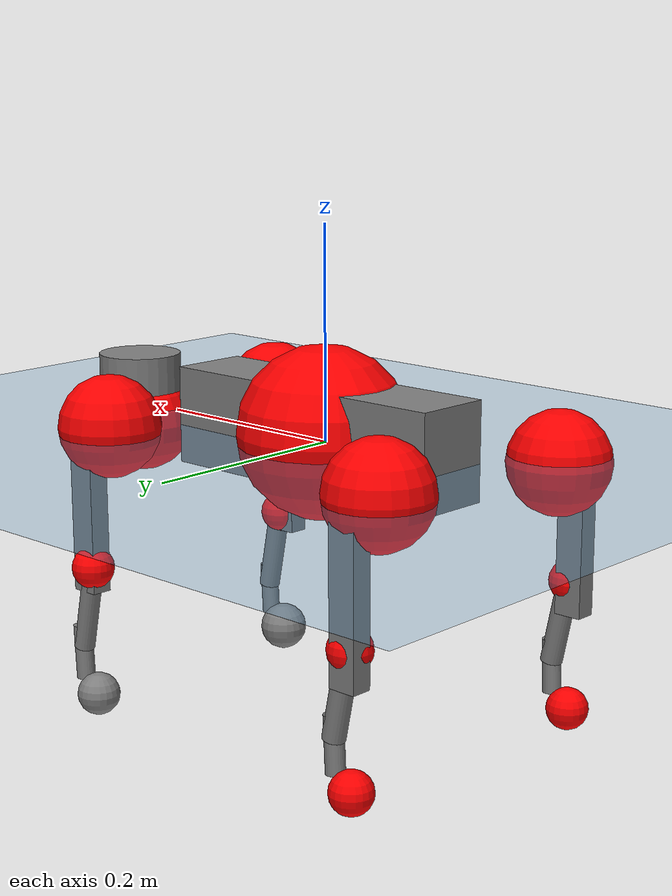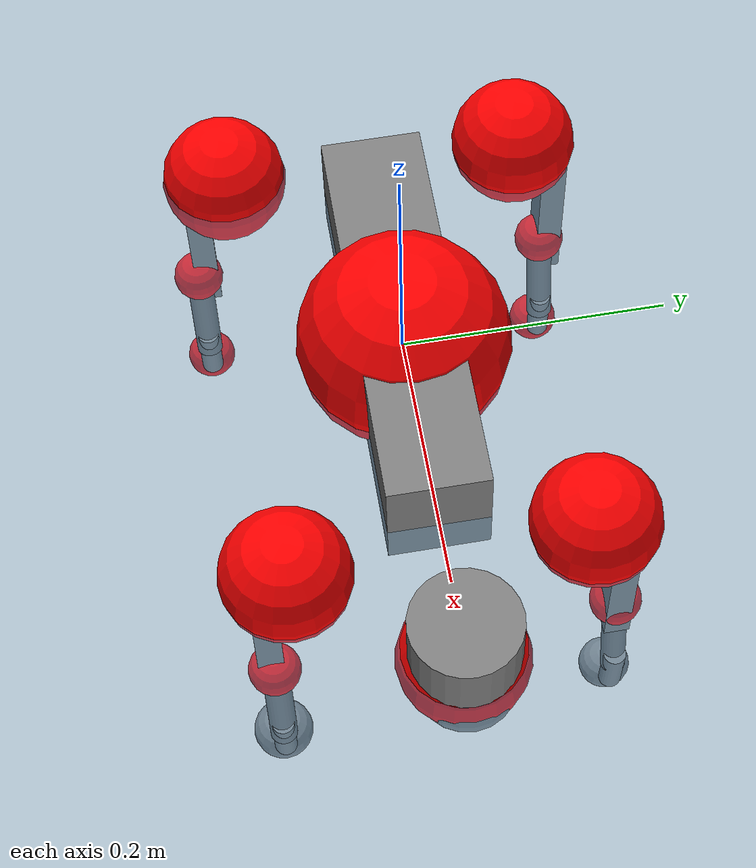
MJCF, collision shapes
<mujoco model="go2">
  <compiler angle="radian" assetdir="assets" balanceinertia="true" inertiafromgeom="false"/>

  <option timestep="0.005" density="1.2" viscosity="2e-05"/>

  <size nkey="1"/>

  <visual>
    <quality shadowsize="8192"/>
    <map shadowclip="0.5"/>
  </visual>

  <default>
    <default class="/">
      <geom contype="0" conaffinity="0" group="1" solref="-1000 -80"/>
      <site size="0.01 0.005 0.005" group="5"/>
      <general forcelimited="true" biastype="affine" gainprm="20" biasprm="0 -20 -0.5"/>
      <default class="go2">
        <joint armature="0.01" damping="0.01" frictionloss="0.2"/>
        <geom condim="1" margin="0.001"/>
        <default class="visual">
          <geom type="mesh" group="2"/>
        </default>
        <default class="collision">
          <geom group="3"/>
          <default class="foot">
            <geom size="0.022 0 0" condim="6" priority="1" friction="0.8 0.02 0.01" solimp="0.015 1 0.022"/>
          </default>
        </default>
        <default class="reward_collision_sphere">
          <geom group="5" rgba="1 0 0 1"/>
        </default>
      </default>
    </default>
  </default>

  <asset>
    <texture type="skybox" colorspace="auto" name="//unnamed_texture_0" builtin="gradient" rgb1="0.95 0.95 0.95" rgb2="0.95 0.95 0.95" width="100" height="600"/>
    <texture type="2d" colorspace="auto" name="texplane" builtin="checker" rgb1="0.345 0.575 0.748" rgb2="0.345 0.575 0.748" markrgb="1 1 1" width="512" height="512"/>
    <material name="MatPlane" class="/" texture="texplane" texuniform="true" texrepeat="2 2" specular="0.9"/>
    <material name="metal" class="/" rgba="0.9 0.95 0.95 1"/>
    <material name="black" class="/" rgba="0 0 0 1"/>
    <material name="white" class="/"/>
    <material name="gray" class="/" rgba="0.671705 0.692426 0.77427 1"/>
    <mesh name="base_0" class="/" file="base_0.obj"/>
    <mesh name="base_1" class="/" file="base_1.obj"/>
    <mesh name="base_2" class="/" file="base_2.obj"/>
    <mesh name="base_3" class="/" file="base_3.obj"/>
    <mesh name="base_4" class="/" file="base_4.obj"/>
    <mesh name="hip_0" class="/" file="hip_0.obj"/>
    <mesh name="hip_1" class="/" file="hip_1.obj"/>
    <mesh name="thigh_0" class="/" file="thigh_0.obj"/>
    <mesh name="thigh_1" class="/" file="thigh_1.obj"/>
    <mesh name="thigh_mirror_0" class="/" file="thigh_mirror_0.obj"/>
    <mesh name="thigh_mirror_1" class="/" file="thigh_mirror_1.obj"/>
    <mesh name="calf_0" class="/" file="calf_0.obj"/>
    <mesh name="calf_1" class="/" file="calf_1.obj"/>
    <mesh name="calf_mirror_0" class="/" file="calf_mirror_0.obj"/>
    <mesh name="calf_mirror_1" class="/" file="calf_mirror_1.obj"/>
    <mesh name="foot" class="/" file="foot.obj"/>
  </asset>

  <worldbody>
    <geom name="floor" class="/" size="100 100 0.125" type="plane" group="0" material="MatPlane"/>
    <light name="toplight_shadow" class="/" pos="0 0 5" dir="0.0990148 0.0990148 -0.990148" type="directional" ambient="0.04 0.04 0.04" diffuse="0.55 0.55 0.55" specular="0.12 0.12 0.12"/>
    <light name="toplight_fill" class="/" pos="0 0 5" dir="0.0990148 0.0990148 -0.990148" type="directional" castshadow="false" ambient="0.04 0.04 0.04" diffuse="0.3 0.3 0.3" specular="0.08 0.08 0.08"/>
    <body name="trunk" childclass="go2" pos="0.00141361 0.000947215 0.00983857" quat="0.99999 0.00281982 0.00262331 -0.0021628">
      <inertial pos="0.0210747 -0.00697162 -0.00348127" quat="0.00232394 0.736662 -0.0265837 0.675734" mass="3.42364" diaginertia="0.0503641 0.0650116 0.00158872"/>
      <joint name="//unnamed_joint_0" type="free" armature="0" damping="0" frictionloss="0"/>
      <geom name="//unnamed_geom_1" class="visual" material="black" mesh="base_0"/>
      <geom name="//unnamed_geom_2" class="visual" material="black" mesh="base_1"/>
      <geom name="//unnamed_geom_3" class="visual" material="black" mesh="base_2"/>
      <geom name="//unnamed_geom_4" class="visual" material="white" mesh="base_3"/>
      <geom name="//unnamed_geom_5" class="visual" material="gray" mesh="base_4"/>
      <geom name="trunk_1" class="collision" size="0.152322 0.0378578 0.0461582" type="box"/>
      <geom name="trunk_2" class="collision" size="0.0404896 0.0364407" pos="0.253109 0 0.00592586" type="cylinder"/>
      <geom name="trunk_3" class="collision" size="0.0380603" pos="0.260214 0 -0.0355551"/>
      <geom name="//unnamed_geom_9" class="reward_collision_sphere" size="0.0809793"/>
      <geom name="//unnamed_geom_10" class="reward_collision_sphere" size="0.0485876" pos="0.248668 0 -0.0266664"/>
      <site name="imu" pos="-0.0193462 -0.0202303 0.0574265" size="0.00809793"/>
      <camera name="track" pos="0 -1.89738 0" quat="0.707107 0.707107 0 0" mode="trackcom"/>
      <camera name="ego_camera" pos="0.277087 0 0.0266664" quat="-0.5 -0.5 0.5 0.5"/>
      <body name="FL_hip" pos="0.171188 0.0430696 -0.00273622" quat="1 -0.000555724 5.27708e-05 1.98376e-05">
        <inertial pos="0.00354038 0.00426207 0.00947504" quat="0.519804 0.463484 0.496165 0.518465" mass="0.379525" diaginertia="0.00047453 0.000483483 3.69753e-05"/>
        <joint name="FL_hip_joint" pos="0 0 0" axis="0.999223 -0.0258932 0.0296979" stiffness="0.0301197" range="-1.06118 0.977656" armature="0.00789586" damping="0.0369894" frictionloss="0.134319"/>
        <geom name="//unnamed_geom_11" class="visual" material="metal" mesh="hip_0"/>
        <geom name="//unnamed_geom_12" class="visual" material="gray" mesh="hip_1"/>
        <geom name="//unnamed_geom_13" class="collision" size="0.0372505 0.0161959" pos="0 0.0758953 0" quat="0.707107 0.707107 0 0" type="cylinder"/>
        <geom name="//unnamed_geom_14" class="reward_collision_sphere" size="0.0485876" pos="0 0.0664084 0"/>
        <body name="FL_thigh" pos="0.00683217 0.0883456 -0.00712297" quat="1 -0.000377273 8.26761e-05 0.000337799">
          <inertial pos="-0.00135198 -0.0198126 -0.0212782" quat="0.829422 0.0838692 -0.0244458 0.551749" mass="0.672413" diaginertia="0.00362791 0.00494029 7.64499e-05"/>
          <joint name="FL_thigh_joint" pos="0 0 0" axis="-0.000334838 1 -0.0001258" stiffness="0.0100743" range="-1.49623 3.49859" armature="0.0101434" damping="0" frictionloss="0.159842"/>
          <geom name="//unnamed_geom_15" class="visual" material="metal" mesh="thigh_0"/>
          <geom name="//unnamed_geom_16" class="visual" material="gray" mesh="thigh_1"/>
          <geom name="//unnamed_geom_17" class="collision" size="0.0862429 0.00991996 0.0137665" pos="0 0 -0.0631104" quat="0.707107 0 0.707107 0" type="box"/>
          <body name="FL_calf" pos="-0.00314088 0.00118335 -0.126413" quat="1 -5.64756e-05 6.21655e-05 -4.23693e-05">
            <inertial pos="0.0165555 0.00859532 -0.0852479" quat="0.711263 -0.00611759 -0.0101419 0.702826" mass="0.127106" diaginertia="0.00089011 0.00112127 3.74327e-06"/>
            <joint name="FL_calf_joint" pos="0 0 0" axis="-0.00998439 0.999948 0.00222105" stiffness="0.0188996" range="-2.50831 -0.918555" armature="0.00847123" damping="0.00548247" frictionloss="0.0791223"/>
            <geom name="//unnamed_geom_18" class="visual" material="gray" mesh="calf_0"/>
            <geom name="//unnamed_geom_19" class="visual" material="black" mesh="calf_1"/>
            <geom name="FL_calf0" class="collision" size="0.00971751 0.0485876" pos="0.00710481 0 -0.0355551" quat="0.994493 0 -0.104807 0" type="cylinder"/>
            <geom name="//unnamed_geom_21" class="collision" size="0.00890772 0.0263183" pos="0.017762 0 -0.0877027" quat="0.999688 0 0.0249974 0" type="cylinder"/>
            <geom name="//unnamed_geom_22" class="visual" pos="0 0 -0.126221" quat="1 0 0 0" material="black" mesh="foot"/>
            <geom name="FL_foot" class="foot" size="0.0204545" pos="-0.0017762 0 -0.126221"/>
            <geom name="//unnamed_geom_24" class="reward_collision_sphere" size="0.0202448"/>
            <geom name="//unnamed_geom_25" class="reward_collision_sphere" size="0.0202448" pos="-0.0017762 0 -0.126221"/>
            <site name="FL_foot" class="foot" pos="-0.0017762 0 -0.126221" size="0.00809793"/>
          </body>
        </body>
      </body>
      <body name="FR_hip" pos="0.175659 -0.0471021 -0.00218218" quat="0.999987 -0.00492003 0.00135818 -0.000479147">
        <inertial pos="-0.00279531 -0.0015884 0.00153323" quat="0.53534 0.481298 0.476636 0.504561" mass="0.317943" diaginertia="0.000498534 0.000452708 3.5987e-05"/>
        <joint name="FR_hip_joint" pos="0 0 0" axis="0.999837 -0.013587 0.0118728" stiffness="0.0371817" range="-0.852851 1.11559" armature="0.00806186" damping="0.0307075" frictionloss="0.123219"/>
        <geom name="//unnamed_geom_26" class="visual" pos="0 3.10225e-09 1.33062e-07" quat="4.63268e-05 1 0 0" material="metal" mesh="hip_0"/>
        <geom name="//unnamed_geom_27" class="visual" pos="0 5.02911e-09 -3.29113e-07" quat="4.63268e-05 1 0 0" material="gray" mesh="hip_1"/>
        <geom name="//unnamed_geom_28" class="collision" size="0.0372505 0.0161959" pos="0 -0.0758953 0" quat="0.707107 0.707107 0 0" type="cylinder"/>
        <geom name="//unnamed_geom_29" class="reward_collision_sphere" size="0.0485876" pos="0 -0.0664084 0"/>
        <body name="FR_thigh" pos="0.00261732 -0.0860669 -0.00335066" quat="0.999999 0.00106923 0.000566213 -0.000183486">
          <inertial pos="0.000207391 0.0235857 -0.0186253" quat="0.552127 -0.0222138 0.085054 0.829113" mass="0.565841" diaginertia="0.00337819 0.00489382 6.25613e-05"/>
          <joint name="FR_thigh_joint" pos="0 0 0" axis="0.000212085 -1 -0.000958202" range="-3.48796 1.64792" armature="0.00919491" damping="0.0587425" frictionloss="0.215425"/>
          <geom name="//unnamed_geom_30" class="visual" material="metal" mesh="thigh_mirror_0"/>
          <geom name="//unnamed_geom_31" class="visual" material="gray" mesh="thigh_mirror_1"/>
          <geom name="//unnamed_geom_32" class="collision" size="0.0862429 0.00991996 0.0137665" pos="0 0 -0.0631104" quat="0.707107 0 0.707107 0" type="box"/>
          <body name="FR_calf" pos="0.009609 0.00229693 -0.131686" quat="1 0.000151576 7.60287e-05 -7.13166e-05">
            <inertial pos="0.00586279 0.00909384 -0.0905033" quat="0.720939 -0.0502582 0.00291378 0.691168" mass="0.140113" diaginertia="0.000890391 0.0011233 4.55061e-06"/>
            <joint name="FR_calf_joint" pos="0 0 0" axis="0.0115026 -0.99992 0.00530248" range="0.805265 2.70042" armature="0.00804782" damping="0.0331602" frictionloss="0.186131"/>
            <geom name="//unnamed_geom_33" class="visual" material="gray" mesh="calf_mirror_0"/>
            <geom name="//unnamed_geom_34" class="visual" material="black" mesh="calf_mirror_1"/>
            <geom name="FR_calf0" class="collision" size="0.0105273 0.0485876" pos="0.00888101 0 -0.0355551" quat="0.995004 0 -0.0998334 0" type="cylinder"/>
            <geom name="//unnamed_geom_36" class="collision" size="0.00890772 0.0263183" pos="0.017762 0 -0.0877027" quat="0.999688 0 0.0249974 0" type="cylinder"/>
            <geom name="//unnamed_geom_37" class="visual" pos="0 0 -0.126221" quat="1 0 0 0" material="black" mesh="foot"/>
            <geom name="FR_foot" class="foot" size="0.0237885" pos="-0.0017762 0 -0.126221"/>
            <geom name="//unnamed_geom_39" class="reward_collision_sphere" size="0.0202448"/>
            <geom name="//unnamed_geom_40" class="reward_collision_sphere" size="0.0202448" pos="-0.0017762 0 -0.126221"/>
            <site name="FR_foot" class="foot" pos="-0.0017762 0 -0.126221" size="0.00809793"/>
          </body>
        </body>
      </body>
      <body name="RL_hip" pos="-0.170626 0.04916 -0.00633627" quat="1 -0.00041347 -0.000305461 -8.78098e-05">
        <inertial pos="0.00566983 0.0101564 0.00979914" quat="0.499409 0.502883 0.501189 0.496496" mass="0.370499" diaginertia="0.000531381 0.000469305 3.97355e-05"/>
        <joint name="RL_hip_joint" pos="0 0 0" axis="-0.999261 -0.0342352 -0.0174605" stiffness="0.00528366" range="-0.891552 0.874906" armature="0.00499287" damping="0" frictionloss="0.159035"/>
        <geom name="//unnamed_geom_41" class="visual" pos="-2.57441e-09 0 -5.04643e-07" quat="4.63268e-05 0 1 0" material="metal" mesh="hip_0"/>
        <geom name="//unnamed_geom_42" class="visual" pos="-4.17342e-09 0 -4.47546e-07" quat="4.63268e-05 0 1 0" material="gray" mesh="hip_1"/>
        <geom name="//unnamed_geom_43" class="collision" size="0.0372505 0.0161959" pos="0 0.0758953 0" quat="0.707107 0.707107 0 0" type="cylinder"/>
        <geom name="//unnamed_geom_44" class="reward_collision_sphere" size="0.0485876" pos="0 0.0664084 0"/>
        <body name="RL_thigh" pos="0.00336178 0.098091 -0.01011" quat="0.999996 -0.00260705 -0.00081553 0.00099947">
          <inertial pos="-0.0138812 -0.0153194 -0.00894877" quat="0.828812 0.0846268 -0.0194086 0.55275" mass="0.514486" diaginertia="0.00251825 0.00392695 5.16704e-05"/>
          <joint name="RL_thigh_joint" pos="0 0 0" axis="-0.0310767 0.99847 0.045733" range="-0.429016 4.56831" armature="0.00837365" damping="0.0589293" frictionloss="0.141378"/>
          <geom name="//unnamed_geom_45" class="visual" material="metal" mesh="thigh_0"/>
          <geom name="//unnamed_geom_46" class="visual" material="gray" mesh="thigh_1"/>
          <geom name="//unnamed_geom_47" class="collision" size="0.0862429 0.00991996 0.0137665" pos="0 0 -0.0631104" quat="0.707107 0 0.707107 0" type="box"/>
          <body name="RL_calf" pos="0.00505854 -0.00657702 -0.118052" quat="0.999995 0.00190404 0.000957605 -0.00246213">
            <inertial pos="0.0150753 -0.00588921 -0.0736994" quat="0.693966 -0.0271977 0.0155593 0.719326" mass="0.140395" diaginertia="0.000880293 0.00125216 4.03785e-06"/>
            <joint name="RL_calf_joint" pos="0 0 0" axis="0.0148429 0.99989 0.000781519" range="-2.7068 -0.618893" armature="0.00475762" damping="0.0552687" frictionloss="0.160194"/>
            <geom name="//unnamed_geom_48" class="visual" material="gray" mesh="calf_0"/>
            <geom name="//unnamed_geom_49" class="visual" material="black" mesh="calf_1"/>
            <geom name="RL_calf0" class="collision" size="0.0105273 0.0485876" pos="0.00888101 0 -0.0355551" quat="0.995004 0 -0.0998334 0" type="cylinder"/>
            <geom name="//unnamed_geom_51" class="collision" size="0.00890772 0.0263183" pos="0.017762 0 -0.0877027" quat="0.999688 0 0.0249974 0" type="cylinder"/>
            <geom name="//unnamed_geom_52" class="visual" pos="0 0 -0.126221" quat="1 0 0 0" material="black" mesh="foot"/>
            <geom name="RL_foot" class="foot" size="0.0170688" pos="-0.0017762 0 -0.126221"/>
            <geom name="//unnamed_geom_54" class="reward_collision_sphere" size="0.0202448"/>
            <geom name="//unnamed_geom_55" class="reward_collision_sphere" size="0.0202448" pos="-0.0017762 0 -0.126221"/>
            <site name="RL_foot" class="foot" pos="-0.0017762 0 -0.126221" size="0.00809793"/>
          </body>
        </body>
      </body>
      <body name="RR_hip" pos="-0.182574 -0.0470557 -0.0181938" quat="1 0.000159729 -0.000109945 0.000306069">
        <inertial pos="0.011671 0.0025129 -0.00310202" quat="0.476075 0.500186 0.483297 0.538136" mass="0.359373" diaginertia="0.000379396 0.000410323 2.94286e-05"/>
        <joint name="RR_hip_joint" pos="0 0 0" axis="-0.99851 -0.0531236 0.0124881" stiffness="0.00701215" range="-0.993188 1.04645" armature="0.00793014" damping="0.0158001" frictionloss="0.0753224"/>
        <geom name="//unnamed_geom_56" class="visual" pos="2.5765e-09 3.10225e-09 -6.37705e-07" quat="2.14617e-09 4.63268e-05 4.63268e-05 -1" material="metal" mesh="hip_0"/>
        <geom name="//unnamed_geom_57" class="visual" pos="4.16823e-09 5.02911e-09 -1.18434e-07" quat="2.14617e-09 4.63268e-05 4.63268e-05 -1" material="gray" mesh="hip_1"/>
        <geom name="//unnamed_geom_58" class="collision" size="0.0372505 0.0161959" pos="0 -0.0758953 0" quat="0.707107 0.707107 0 0" type="cylinder"/>
        <geom name="//unnamed_geom_59" class="reward_collision_sphere" size="0.0485876" pos="0 -0.0664084 0"/>
        <body name="RR_thigh" pos="-0.00189532 -0.0925258 0.000842879" quat="0.999999 -0.000679805 0.000721538 -0.000264829">
          <inertial pos="-0.00658436 0.0245465 -0.0104523" quat="0.531294 -0.025916 0.0874755 0.842261" mass="0.698462" diaginertia="0.00300472 0.00445788 6.49816e-05"/>
          <joint name="RR_thigh_joint" pos="0 0 0" axis="-0.00715996 -0.999943 0.00791973" stiffness="0.005203" range="-4.52593 0.651104" armature="0.00873749" damping="0.0102751" frictionloss="0.163931"/>
          <geom name="//unnamed_geom_60" class="visual" material="metal" mesh="thigh_mirror_0"/>
          <geom name="//unnamed_geom_61" class="visual" material="gray" mesh="thigh_mirror_1"/>
          <geom name="//unnamed_geom_62" class="collision" size="0.0862429 0.00991996 0.0137665" pos="0 0 -0.0631104" quat="0.707107 0 0.707107 0" type="box"/>
          <body name="RR_calf" pos="0.0089747 -0.0067021 -0.120329" quat="0.999985 -0.00151992 -0.00351203 -0.0039506">
            <inertial pos="0.0044729 0.00136916 -0.0863853" quat="0.699053 0.0377337 -0.00197013 0.714071" mass="0.120298" diaginertia="0.00076897 0.0010187 4.0821e-06"/>
            <joint name="RR_calf_joint" pos="0 0 0" axis="-0.00580681 -0.998691 -0.0508208" stiffness="0.045839" range="0.683371 2.72346" armature="0.00858469" damping="0.0486316" frictionloss="0.164866"/>
            <geom name="//unnamed_geom_63" class="visual" material="gray" mesh="calf_mirror_0"/>
            <geom name="//unnamed_geom_64" class="visual" material="black" mesh="calf_mirror_1"/>
            <geom name="RR_calf0" class="collision" size="0.0105273 0.0485876" pos="0.00888101 0 -0.0355551" quat="0.995004 0 -0.0998334 0" type="cylinder"/>
            <geom name="//unnamed_geom_66" class="collision" size="0.00890772 0.0263183" pos="0.017762 0 -0.0877027" quat="0.999688 0 0.0249974 0" type="cylinder"/>
            <geom name="//unnamed_geom_67" class="visual" pos="0 0 -0.126221" quat="1 0 0 0" material="black" mesh="foot"/>
            <geom name="RR_foot" class="foot" size="0.0182857" pos="-0.0017762 0 -0.126221"/>
            <geom name="//unnamed_geom_69" class="reward_collision_sphere" size="0.0202448"/>
            <geom name="//unnamed_geom_70" class="reward_collision_sphere" size="0.0202448" pos="-0.0017762 0 -0.126221"/>
            <site name="RR_foot" class="foot" pos="-0.0017762 0 -0.126221" size="0.00809793"/>
          </body>
        </body>
      </body>
    </body>
  </worldbody>

  <contact>
    <pair class="/" geom1="floor" geom2="FL_foot" name="//unnamed_contact_0"/>
    <pair class="/" geom1="floor" geom2="FR_foot" name="//unnamed_contact_1"/>
    <pair class="/" geom1="floor" geom2="RL_foot" name="//unnamed_contact_2"/>
    <pair class="/" geom1="floor" geom2="RR_foot" name="//unnamed_contact_3"/>
  </contact>

  <actuator>
    <general name="FL_hip" class="/" joint="FL_hip_joint" forcerange="-17.7014 17.7014" gainprm="16.4454" biasprm="0 -16.4454 -0.407302"/>
    <general name="FL_thigh" class="/" joint="FL_thigh_joint" forcerange="-19.7575 19.7575" gainprm="16.4454" biasprm="0 -16.4454 -0.407302"/>
    <general name="FL_calf" class="/" joint="FL_calf_joint" forcerange="-31.5143 31.5143" gainprm="16.4454" biasprm="0 -16.4454 -0.407302"/>
    <general name="FR_hip" class="/" joint="FR_hip_joint" forcerange="-18.4277 18.4277" gainprm="16.4454" biasprm="0 -16.4454 -0.407302"/>
    <general name="FR_thigh" class="/" joint="FR_thigh_joint" forcerange="-16.6236 16.6236" gainprm="16.4454" biasprm="0 -16.4454 -0.407302"/>
    <general name="FR_calf" class="/" joint="FR_calf_joint" forcerange="-35.2528 35.2528" gainprm="16.4454" biasprm="0 -16.4454 -0.407302"/>
    <general name="RL_hip" class="/" joint="RL_hip_joint" forcerange="-18.4198 18.4198" gainprm="16.4454" biasprm="0 -16.4454 -0.407302"/>
    <general name="RL_thigh" class="/" joint="RL_thigh_joint" forcerange="-26.1816 26.1816" gainprm="16.4454" biasprm="0 -16.4454 -0.407302"/>
    <general name="RL_calf" class="/" joint="RL_calf_joint" forcerange="-25.335 25.335" gainprm="16.4454" biasprm="0 -16.4454 -0.407302"/>
    <general name="RR_hip" class="/" joint="RR_hip_joint" forcerange="-18.8584 18.8584" gainprm="16.4454" biasprm="0 -16.4454 -0.407302"/>
    <general name="RR_thigh" class="/" joint="RR_thigh_joint" forcerange="-20.1283 20.1283" gainprm="16.4454" biasprm="0 -16.4454 -0.407302"/>
    <general name="RR_calf" class="/" joint="RR_calf_joint" forcerange="-30.9758 30.9758" gainprm="16.4454" biasprm="0 -16.4454 -0.407302"/>
  </actuator>

  <sensor>
    <gyro site="imu" name="imu_angular_velocity"/>
    <velocimeter site="imu" name="imu_linear_velocity"/>
    <framelinvel objtype="site" objname="FL_foot" name="FL_foot_global_linear_velocity"/>
    <framelinvel objtype="site" objname="FR_foot" name="FR_foot_global_linear_velocity"/>
    <framelinvel objtype="site" objname="RL_foot" name="RL_foot_global_linear_velocity"/>
    <framelinvel objtype="site" objname="RR_foot" name="RR_foot_global_linear_velocity"/>
  </sensor>

  <keyframe>
    <key name="home" qpos="0 0 0.325 1 0 0 0 0.1 0.8 -1.5 -0.1 -0.8 1.5 -0.1 0.8 -1.5 0.1 -0.8 1.5"/>
  </keyframe>
</mujoco>
